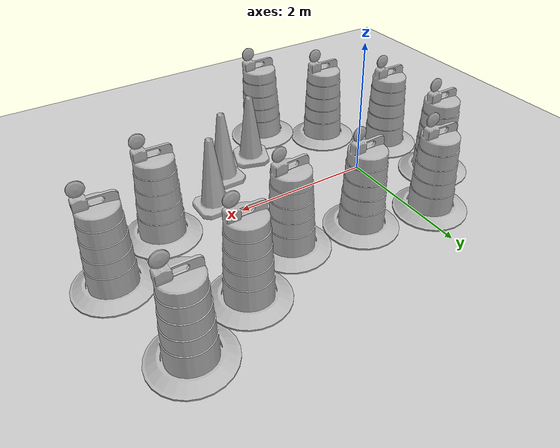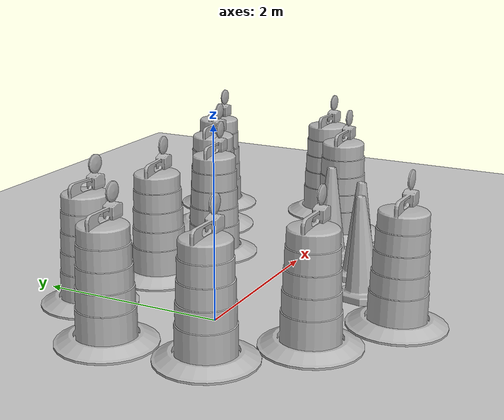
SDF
<sdf version="1.7">
 <world name="default">
  <light name="sun" type="directional">
   <pose>0 0 10 0 -0 0</pose>
   <diffuse>0.8 0.8 0.8 1</diffuse>
   <specular>0.2 0.2 0.2 1</specular>
   <attenuation>
    <range>1000</range>
    <constant>0.9</constant>
    <linear>0.01</linear>
    <quadratic>0.001</quadratic>
   </attenuation>
   <direction>-0.5 0.1 -0.9</direction>
   <spot><inner_angle>0</inner_angle><outer_angle>0</outer_angle><falloff>0</falloff></spot>
  </light>
  <gravity>0 0 -9.8</gravity>
  <magnetic_field>6e-06 2.3e-05 -4.2e-05</magnetic_field>
  <atmosphere type="adiabatic"/>
  <physics type="ode">
   <max_step_size>0.001</max_step_size>
   <real_time_factor>1</real_time_factor>
   <real_time_update_rate>1000</real_time_update_rate>
  </physics>
  <scene><ambient>0.4 0.4 0.4 1</ambient><background>0.7 0.7 0.7 1</background><shadows>1</shadows></scene>
  <audio><device>default</device></audio>
  <spherical_coordinates>
   <surface_model>EARTH_WGS84</surface_model>
   <latitude_deg>0</latitude_deg>
   <longitude_deg>0</longitude_deg>
   <elevation>0</elevation>
   <heading_deg>0</heading_deg>
  </spherical_coordinates>
  <model name="Construction Cone">
   <link name="link">
    <collision name="collision">
     <geometry>
      <mesh><scale>10 10 10</scale><uri>model://construction_cone/meshes/construction_cone.dae</uri></mesh>
     </geometry>
    </collision>
    <visual name="visual">
     <geometry>
      <mesh><scale>10 10 10</scale><uri>model://construction_cone/meshes/construction_cone.dae</uri></mesh>
     </geometry>
    </visual>
    <inertial>
     <inertia><ixx>1</ixx><ixy>0</ixy><ixz>0</ixz><iyy>1</iyy><iyz>0</iyz><izz>1</izz></inertia>
     <mass>1</mass>
    </inertial>
   </link>
   <pose>1.23548 -1.09798 0.019946 -0.072362 0.01037 -0.321873</pose>
  </model>
  <model name="Construction Cone_clone">
   <link name="link">
    <collision name="collision">
     <geometry>
      <mesh><scale>10 10 10</scale><uri>model://construction_cone/meshes/construction_cone.dae</uri></mesh>
     </geometry>
    </collision>
    <visual name="visual">
     <geometry>
      <mesh><scale>10 10 10</scale><uri>model://construction_cone/meshes/construction_cone.dae</uri></mesh>
     </geometry>
    </visual>
    <inertial>
     <inertia><ixx>1</ixx><ixy>0</ixy><ixz>0</ixz><iyy>1</iyy><iyz>0</iyz><izz>1</izz></inertia>
     <mass>1</mass>
    </inertial>
   </link>
   <pose>1.83396 -0.8239 0 -0 -0 -1e-06</pose>
  </model>
  <model name="Construction Cone_clone_0">
   <link name="link">
    <collision name="collision">
     <geometry>
      <mesh><scale>10 10 10</scale><uri>model://construction_cone/meshes/construction_cone.dae</uri></mesh>
     </geometry>
    </collision>
    <visual name="visual">
     <geometry>
      <mesh><scale>10 10 10</scale><uri>model://construction_cone/meshes/construction_cone.dae</uri></mesh>
     </geometry>
    </visual>
    <inertial>
     <inertia><ixx>1</ixx><ixy>0</ixy><ixz>0</ixz><iyy>1</iyy><iyz>0</iyz><izz>1</izz></inertia>
     <mass>1</mass>
    </inertial>
   </link>
   <pose>2.27671 -0.290489 -0 0 -0 0</pose>
  </model>
  <model name="ground_plane">
   <static>1</static>
   <link name="link">
    <collision name="collision">
     <geometry><plane><normal>0 0 1</normal><size>100 100</size></plane></geometry>
     <surface>
      <contact><collide_bitmask>65535</collide_bitmask></contact>
      <friction><ode><mu>100</mu><mu2>50</mu2></ode></friction>
     </surface>
    </collision>
    <visual name="visual">
     <cast_shadows>0</cast_shadows>
     <geometry><plane><normal>0 0 1</normal><size>100 100</size></plane></geometry>
     <material>
      <script><uri>file://media/materials/scripts/gazebo.material</uri><name>Gazebo/Grey</name></script>
     </material>
    </visual>
   </link>
  </model>
  <model name="Construction Barrel">
   <link name="link">
    <inertial>
     <pose>0 0 0.4 0 -0 0</pose>
     <mass>500</mass>
     <inertia><ixx>51.2096</ixx><iyy>51.2096</iyy><izz>25</izz><ixy>0</ixy><ixz>0</ixz><iyz>0</iyz></inertia>
    </inertial>
    <collision name="collision">
     <geometry><mesh><uri>model://construction_barrel/meshes/construction_barrel.dae</uri></mesh></geometry>
    </collision>
    <visual name="visual">
     <geometry><mesh><uri>model://construction_barrel/meshes/construction_barrel.dae</uri></mesh></geometry>
    </visual>
   </link>
   <pose>-0.119157 -1.09577 -0.00215 0.001465 0.002518 -0.00399</pose>
  </model>
  <model name="Construction Barrel_clone">
   <link name="link">
    <inertial>
     <pose>0 0 0.4 0 -0 0</pose>
     <mass>500</mass>
     <inertia><ixx>51.2096</ixx><iyy>51.2096</iyy><izz>25</izz><ixy>0</ixy><ixz>0</ixz><iyz>0</iyz></inertia>
    </inertial>
    <collision name="collision">
     <geometry><mesh><uri>model://construction_barrel/meshes/construction_barrel.dae</uri></mesh></geometry>
    </collision>
    <visual name="visual">
     <geometry><mesh><uri>model://construction_barrel/meshes/construction_barrel.dae</uri></mesh></geometry>
    </visual>
   </link>
   <pose>-0.834339 -0.370442 0 0 1e-06 -2.4e-05</pose>
  </model>
  <model name="Construction Barrel_clone_0">
   <link name="link">
    <inertial>
     <pose>0 0 0.4 0 -0 0</pose>
     <mass>500</mass>
     <inertia><ixx>51.2096</ixx><iyy>51.2096</iyy><izz>25</izz><ixy>0</ixy><ixz>0</ixz><iyz>0</iyz></inertia>
    </inertial>
    <collision name="collision">
     <geometry><mesh><uri>model://construction_barrel/meshes/construction_barrel.dae</uri></mesh></geometry>
    </collision>
    <visual name="visual">
     <geometry><mesh><uri>model://construction_barrel/meshes/construction_barrel.dae</uri></mesh></geometry>
    </visual>
   </link>
   <pose>-0.932611 0.657403 -1.7e-05 1e-06 1.1e-05 -0.000386</pose>
  </model>
  <model name="Construction Barrel_clone_1">
   <link name="link">
    <inertial>
     <pose>0 0 0.4 0 -0 0</pose>
     <mass>500</mass>
     <inertia><ixx>51.2096</ixx><iyy>51.2096</iyy><izz>25</izz><ixy>0</ixy><ixz>0</ixz><iyz>0</iyz></inertia>
    </inertial>
    <collision name="collision">
     <geometry><mesh><uri>model://construction_barrel/meshes/construction_barrel.dae</uri></mesh></geometry>
    </collision>
    <visual name="visual">
     <geometry><mesh><uri>model://construction_barrel/meshes/construction_barrel.dae</uri></mesh></geometry>
    </visual>
   </link>
   <pose>-0.203107 1.36318 0.010559 -0.016567 0.012717 -0.066125</pose>
  </model>
  <model name="Construction Barrel_clone_2">
   <link name="link">
    <inertial>
     <pose>0 0 0.4 0 -0 0</pose>
     <mass>500</mass>
     <inertia><ixx>51.2096</ixx><iyy>51.2096</iyy><izz>25</izz><ixy>0</ixy><ixz>0</ixz><iyz>0</iyz></inertia>
    </inertial>
    <collision name="collision">
     <geometry><mesh><uri>model://construction_barrel/meshes/construction_barrel.dae</uri></mesh></geometry>
    </collision>
    <visual name="visual">
     <geometry><mesh><uri>model://construction_barrel/meshes/construction_barrel.dae</uri></mesh></geometry>
    </visual>
   </link>
   <pose>0.835736 1.15194 0.010911 -0.002854 -0.021389 0.072807</pose>
  </model>
  <model name="Construction Barrel_clone_3">
   <link name="link">
    <inertial>
     <pose>0 0 0.4 0 -0 0</pose>
     <mass>500</mass>
     <inertia><ixx>51.2096</ixx><iyy>51.2096</iyy><izz>25</izz><ixy>0</ixy><ixz>0</ixz><iyz>0</iyz></inertia>
    </inertial>
    <collision name="collision">
     <geometry><mesh><uri>model://construction_barrel/meshes/construction_barrel.dae</uri></mesh></geometry>
    </collision>
    <visual name="visual">
     <geometry><mesh><uri>model://construction_barrel/meshes/construction_barrel.dae</uri></mesh></geometry>
    </visual>
   </link>
   <pose>1.83496 1.00522 -1.5e-05 1.3e-05 -1.6e-05 0.071444</pose>
  </model>
  <model name="Construction Barrel_clone_4">
   <link name="link">
    <inertial>
     <pose>0 0 0.4 0 -0 0</pose>
     <mass>500</mass>
     <inertia><ixx>51.2096</ixx><iyy>51.2096</iyy><izz>25</izz><ixy>0</ixy><ixz>0</ixz><iyz>0</iyz></inertia>
    </inertial>
    <collision name="collision">
     <geometry><mesh><uri>model://construction_barrel/meshes/construction_barrel.dae</uri></mesh></geometry>
    </collision>
    <visual name="visual">
     <geometry><mesh><uri>model://construction_barrel/meshes/construction_barrel.dae</uri></mesh></geometry>
    </visual>
   </link>
   <pose>0.699523 -1.65832 0.011335 0.013662 0.017803 0.002104</pose>
  </model>
  <model name="Construction Barrel_clone_5">
   <link name="link">
    <inertial>
     <pose>0 0 0.4 0 -0 0</pose>
     <mass>500</mass>
     <inertia><ixx>51.2096</ixx><iyy>51.2096</iyy><izz>25</izz><ixy>0</ixy><ixz>0</ixz><iyz>0</iyz></inertia>
    </inertial>
    <collision name="collision">
     <geometry><mesh><uri>model://construction_barrel/meshes/construction_barrel.dae</uri></mesh></geometry>
    </collision>
    <visual name="visual">
     <geometry><mesh><uri>model://construction_barrel/meshes/construction_barrel.dae</uri></mesh></geometry>
    </visual>
   </link>
   <pose>3.11658 -0.094037 0.011009 0.008388 -0.020088 -0.004262</pose>
  </model>
  <model name="Construction Barrel_clone_6">
   <link name="link">
    <inertial>
     <pose>0 0 0.4 0 -0 0</pose>
     <mass>500</mass>
     <inertia><ixx>51.2096</ixx><iyy>51.2096</iyy><izz>25</izz><ixy>0</ixy><ixz>0</ixz><iyz>0</iyz></inertia>
    </inertial>
    <collision name="collision">
     <geometry><mesh><uri>model://construction_barrel/meshes/construction_barrel.dae</uri></mesh></geometry>
    </collision>
    <visual name="visual">
     <geometry><mesh><uri>model://construction_barrel/meshes/construction_barrel.dae</uri></mesh></geometry>
    </visual>
   </link>
   <pose>2.73028 1.50554 0.011918 0.009021 -0.021782 0.015837</pose>
  </model>
  <model name="Construction Barrel_clone_7">
   <link name="link">
    <inertial>
     <pose>0 0 0.4 0 -0 0</pose>
     <mass>500</mass>
     <inertia><ixx>51.2096</ixx><iyy>51.2096</iyy><izz>25</izz><ixy>0</ixy><ixz>0</ixz><iyz>0</iyz></inertia>
    </inertial>
    <collision name="collision">
     <geometry><mesh><uri>model://construction_barrel/meshes/construction_barrel.dae</uri></mesh></geometry>
    </collision>
    <visual name="visual">
     <geometry><mesh><uri>model://construction_barrel/meshes/construction_barrel.dae</uri></mesh></geometry>
    </visual>
   </link>
   <pose>3.95984 0.459201 0 0 0 -0.059752</pose>
  </model>
  <model name="Construction Barrel_clone_8">
   <link name="link">
    <inertial>
     <pose>0 0 0.4 0 -0 0</pose>
     <mass>500</mass>
     <inertia><ixx>51.2096</ixx><iyy>51.2096</iyy><izz>25</izz><ixy>0</ixy><ixz>0</ixz><iyz>0</iyz></inertia>
    </inertial>
    <collision name="collision">
     <geometry><mesh><uri>model://construction_barrel/meshes/construction_barrel.dae</uri></mesh></geometry>
    </collision>
    <visual name="visual">
     <geometry><mesh><uri>model://construction_barrel/meshes/construction_barrel.dae</uri></mesh></geometry>
    </visual>
   </link>
   <pose>3.64106 1.92151 -0 0 0 -0.009877</pose>
  </model>
 </world>
</sdf>
